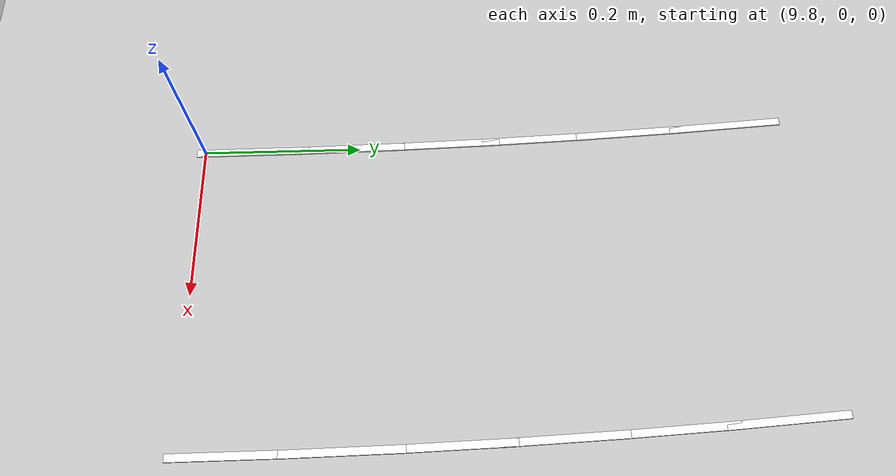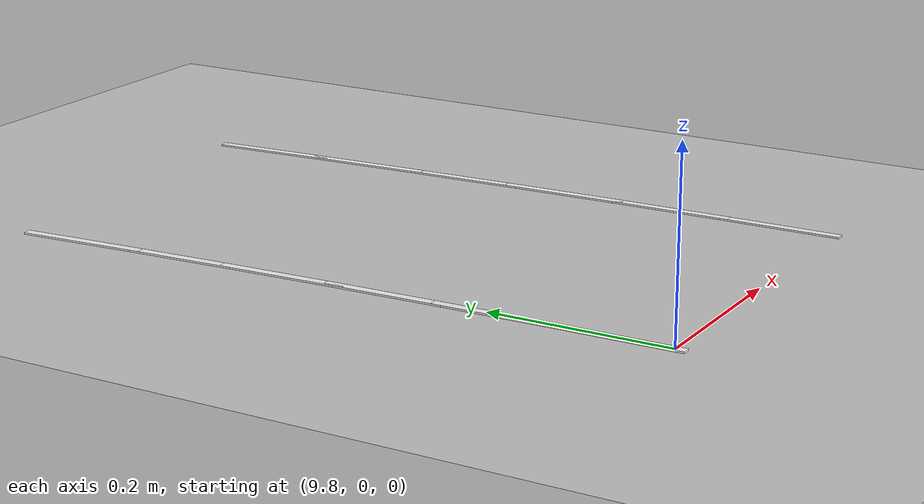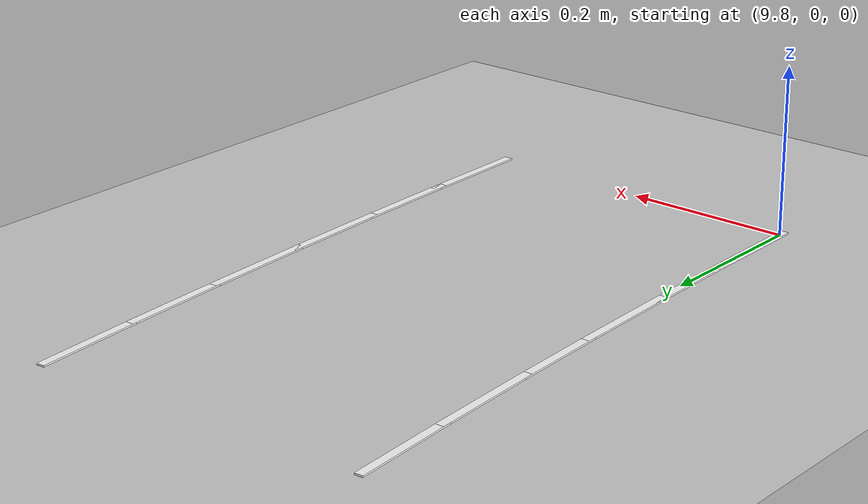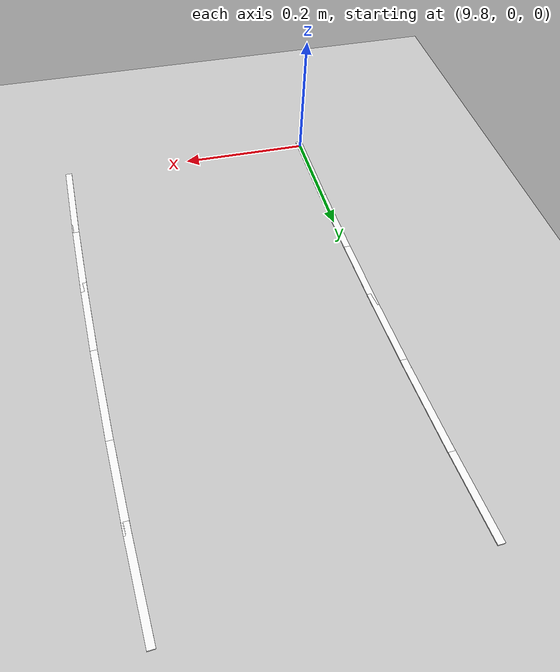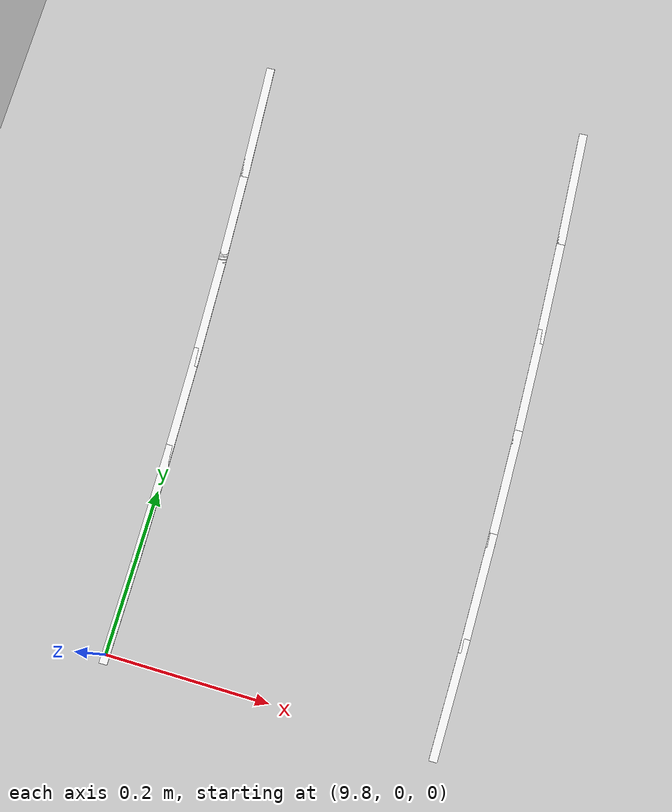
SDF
<sdf version="1.7">
 <world name="default">
  <model name="ground_plane">
   <static>1</static>
   <link name="link">
    <collision name="collision">
     <geometry><plane><normal>0 0 1</normal><size>100 100</size></plane></geometry>
     <surface>
      <contact><collide_bitmask>65535</collide_bitmask></contact>
      <friction><ode><mu>100</mu><mu2>50</mu2></ode></friction>
     </surface>
    </collision>
    <visual name="visual">
     <cast_shadows>0</cast_shadows>
     <geometry><plane><normal>0 0 1</normal><size>100 100</size></plane></geometry>
     <material>
      <script><uri>file://media/materials/scripts/gazebo.material</uri><name>Gazebo/Grey</name></script>
     </material>
    </visual>
   </link>
  </model>
  <model name="lane_line_left_0">
   <static>1</static>
   <link name="link">
    <pose>0 0 -0.004 0 -0 0</pose>
    <visual name="visual">
     <geometry><box><size>0.1457 0.01 0.01</size></box></geometry>
     <material><ambient>1 1 1 1</ambient><diffuse>1 1 1 1</diffuse></material>
    </visual>
    <collision name="collision"><geometry><box><size>0.1457 0.01 0.01</size></box></geometry></collision>
   </link>
   <pose>9.79961 0.061574 0 0 -0 1.57708</pose>
  </model>
  <model name="lane_line_right_0">
   <static>1</static>
   <link name="link">
    <pose>0 0 -0.004 0 -0 0</pose>
    <visual name="visual">
     <geometry><box><size>0.1457 0.01 0.01</size></box></geometry>
     <material><ambient>1 1 1 1</ambient><diffuse>1 1 1 1</diffuse></material>
    </visual>
    <collision name="collision"><geometry><box><size>0.1457 0.01 0.01</size></box></geometry></collision>
   </link>
   <pose>10.1996 0.064087 0 0 -0 1.57708</pose>
  </model>
  <model name="lane_line_left_1">
   <static>1</static>
   <link name="link">
    <pose>0 0 -0.004 0 -0 0</pose>
    <visual name="visual">
     <geometry><box><size>0.1457 0.01 0.01</size></box></geometry>
     <material><ambient>1 1 1 1</ambient><diffuse>1 1 1 1</diffuse></material>
    </visual>
    <collision name="collision"><geometry><box><size>0.1457 0.01 0.01</size></box></geometry></collision>
   </link>
   <pose>9.79806 0.184711 0 0 -0 1.58965</pose>
  </model>
  <model name="lane_line_right_1">
   <static>1</static>
   <link name="link">
    <pose>0 0 -0.004 0 -0 0</pose>
    <visual name="visual">
     <geometry><box><size>0.1457 0.01 0.01</size></box></geometry>
     <material><ambient>1 1 1 1</ambient><diffuse>1 1 1 1</diffuse></material>
    </visual>
    <collision name="collision"><geometry><box><size>0.1457 0.01 0.01</size></box></geometry></collision>
   </link>
   <pose>10.198 0.19225 0 0 -0 1.58965</pose>
  </model>
  <model name="lane_line_left_2">
   <static>1</static>
   <link name="link">
    <pose>0 0 -0.004 0 -0 0</pose>
    <visual name="visual">
     <geometry><box><size>0.1457 0.01 0.01</size></box></geometry>
     <material><ambient>1 1 1 1</ambient><diffuse>1 1 1 1</diffuse></material>
    </visual>
    <collision name="collision"><geometry><box><size>0.1457 0.01 0.01</size></box></geometry></collision>
   </link>
   <pose>9.79497 0.307819 0 0 -0 1.60221</pose>
  </model>
  <model name="lane_line_right_2">
   <static>1</static>
   <link name="link">
    <pose>0 0 -0.004 0 -0 0</pose>
    <visual name="visual">
     <geometry><box><size>0.1457 0.01 0.01</size></box></geometry>
     <material><ambient>1 1 1 1</ambient><diffuse>1 1 1 1</diffuse></material>
    </visual>
    <collision name="collision"><geometry><box><size>0.1457 0.01 0.01</size></box></geometry></collision>
   </link>
   <pose>10.1948 0.320384 0 0 -0 1.60221</pose>
  </model>
  <model name="lane_line_left_3">
   <static>1</static>
   <link name="link">
    <pose>0 0 -0.004 0 -0 0</pose>
    <visual name="visual">
     <geometry><box><size>0.1457 0.01 0.01</size></box></geometry>
     <material><ambient>1 1 1 1</ambient><diffuse>1 1 1 1</diffuse></material>
    </visual>
    <collision name="collision"><geometry><box><size>0.1457 0.01 0.01</size></box></geometry></collision>
   </link>
   <pose>9.79033 0.430879 0 0 -0 1.61478</pose>
  </model>
  <model name="lane_line_right_3">
   <static>1</static>
   <link name="link">
    <pose>0 0 -0.004 0 -0 0</pose>
    <visual name="visual">
     <geometry><box><size>0.1457 0.01 0.01</size></box></geometry>
     <material><ambient>1 1 1 1</ambient><diffuse>1 1 1 1</diffuse></material>
    </visual>
    <collision name="collision"><geometry><box><size>0.1457 0.01 0.01</size></box></geometry></collision>
   </link>
   <pose>10.1899 0.448466 0 0 -0 1.61478</pose>
  </model>
  <model name="lane_line_left_4">
   <static>1</static>
   <link name="link">
    <pose>0 0 -0.004 0 -0 0</pose>
    <visual name="visual">
     <geometry><box><size>0.1457 0.01 0.01</size></box></geometry>
     <material><ambient>1 1 1 1</ambient><diffuse>1 1 1 1</diffuse></material>
    </visual>
    <collision name="collision"><geometry><box><size>0.1457 0.01 0.01</size></box></geometry></collision>
   </link>
   <pose>9.78414 0.55387 0 0 -0 1.62734</pose>
  </model>
  <model name="lane_line_right_4">
   <static>1</static>
   <link name="link">
    <pose>0 0 -0.004 0 -0 0</pose>
    <visual name="visual">
     <geometry><box><size>0.1457 0.01 0.01</size></box></geometry>
     <material><ambient>1 1 1 1</ambient><diffuse>1 1 1 1</diffuse></material>
    </visual>
    <collision name="collision"><geometry><box><size>0.1457 0.01 0.01</size></box></geometry></collision>
   </link>
   <pose>10.1835 0.576478 0 0 -0 1.62734</pose>
  </model>
  <model name="lane_line_left_5">
   <static>1</static>
   <link name="link">
    <pose>0 0 -0.004 0 -0 0</pose>
    <visual name="visual">
     <geometry><box><size>0.1457 0.01 0.01</size></box></geometry>
     <material><ambient>1 1 1 1</ambient><diffuse>1 1 1 1</diffuse></material>
    </visual>
    <collision name="collision"><geometry><box><size>0.1457 0.01 0.01</size></box></geometry></collision>
   </link>
   <pose>9.77641 0.676775 0 0 -0 1.63991</pose>
  </model>
  <model name="lane_line_right_5">
   <static>1</static>
   <link name="link">
    <pose>0 0 -0.004 0 -0 0</pose>
    <visual name="visual">
     <geometry><box><size>0.1457 0.01 0.01</size></box></geometry>
     <material><ambient>1 1 1 1</ambient><diffuse>1 1 1 1</diffuse></material>
    </visual>
    <collision name="collision"><geometry><box><size>0.1457 0.01 0.01</size></box></geometry></collision>
   </link>
   <pose>10.1755 0.704399 0 0 -0 1.63991</pose>
  </model>
 </world>
</sdf>
